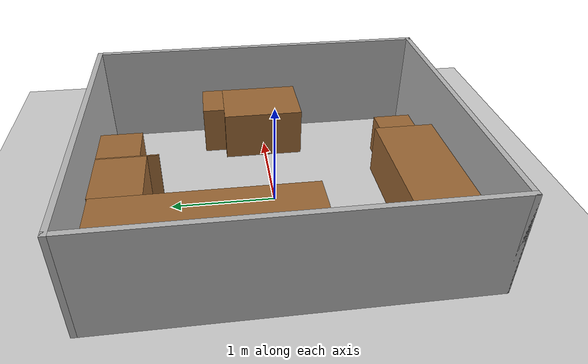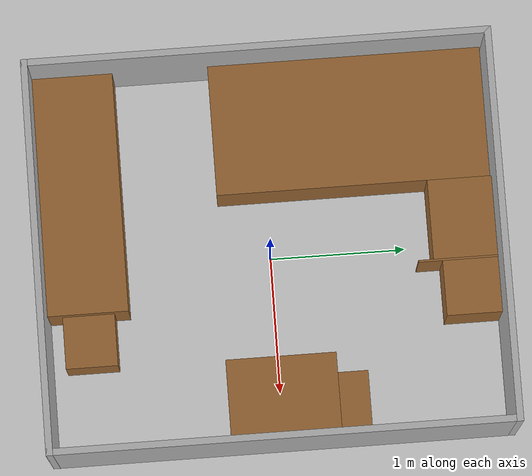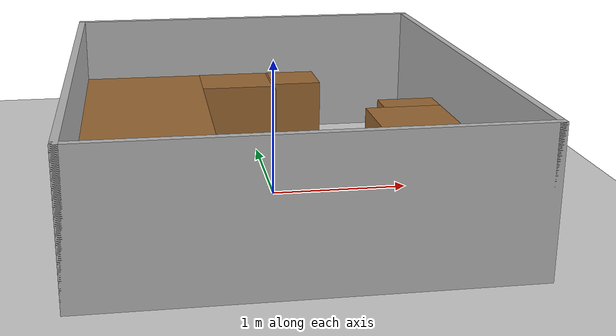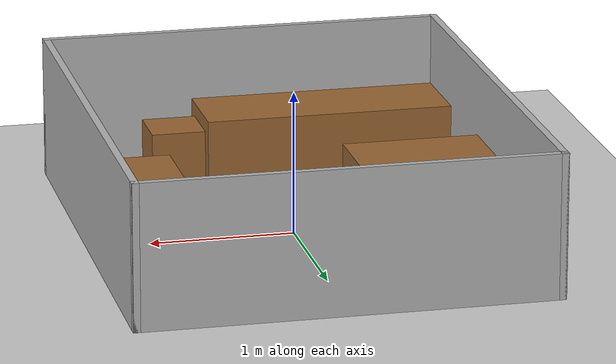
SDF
<sdf version='1.10'>
  <world name='empty'>

    <physics name='1ms' type='ignored'>
      <max_step_size>0.001</max_step_size>
      <real_time_factor>1</real_time_factor>
      <real_time_update_rate>1000</real_time_update_rate>
    </physics>
    <plugin name='gz::sim::systems::Physics' filename='gz-sim-physics-system'/>
    <plugin name='gz::sim::systems::UserCommands' filename='gz-sim-user-commands-system'/>
    <plugin name='gz::sim::systems::SceneBroadcaster' filename='gz-sim-scene-broadcaster-system'/>
    <plugin name='gz::sim::systems::Contact' filename='gz-sim-contact-system'/>
    <plugin name='gz::sim::systems::NavSat' filename='gz-sim-navsat-system'/>
    <plugin name='gz::sim::systems::Sensors' filename='gz-sim-sensors-system'>
      <render_engine>ogre2</render_engine>
    </plugin>
    <plugin name='gz::sim::systems::Imu' filename='gz-sim-imu-system'/>

    <gravity>0 0 -9.8</gravity>
    <magnetic_field>5.5645e-06 2.28758e-05 -4.23884e-05</magnetic_field>
    <atmosphere type='adiabatic'/>
    <scene>
      <ambient>0.4 0.4 0.4 1</ambient>
      <background>0.7 0.7 0.7 1</background>
      <shadows>true</shadows>
    </scene>

    <!-- ─── Ground plane ─── -->
    <model name='ground_plane'>
      <static>true</static>
      <link name='link'>
        <collision name='collision'>
          <geometry><plane><normal>0 0 1</normal><size>100 100</size></plane></geometry>
          <surface><friction><ode/></friction><bounce/><contact/></surface>
        </collision>
        <visual name='visual'>
          <geometry><plane><normal>0 0 1</normal><size>100 100</size></plane></geometry>
          <material>
            <ambient>0.8 0.8 0.8 1</ambient>
            <diffuse>0.8 0.8 0.8 1</diffuse>
            <specular>0.8 0.8 0.8 1</specular>
          </material>
        </visual>
        <pose>0 0 0 0 0 0</pose>
        <inertial>
          <pose>0 0 0 0 0 0</pose>
          <mass>1</mass>
          <inertia>
            <ixx>1</ixx><ixy>0</ixy><ixz>0</ixz>
            <iyy>1</iyy><iyz>0</iyz><izz>1</izz>
          </inertia>
        </inertial>
        <enable_wind>false</enable_wind>
      </link>
      <pose>0 0 0 0 0 0</pose>
      <self_collide>false</self_collide>
    </model>

    <!--
    ===========================================================
    ROOM WALLS
    ===========================================================
    -->
    <!-- Top wall (+y) -->
    <model name='wall_top'>
      <pose>0 1.675 0.5 0 0 0</pose>
      <link name='box_link'>
        <inertial>
          <inertia><ixx>0.167</ixx><ixy>0</ixy><ixz>0</ixz><iyy>0.167</iyy><iyz>0</iyz><izz>0.167</izz></inertia>
          <mass>1</mass><pose>0 0 0 0 0 0</pose>
        </inertial>
        <collision name='box_collision'>
          <geometry><box><size>2.87 0.05 1.0</size></box></geometry>
          <surface><friction><ode/></friction><bounce/><contact/></surface>
        </collision>
        <visual name='box_visual'>
          <geometry><box><size>2.87 0.05 1.0</size></box></geometry>
          <material>
            <ambient>0.3 0.3 0.3 1</ambient>
            <diffuse>0.7 0.7 0.7 1</diffuse>
            <specular>1 1 1 1</specular>
          </material>
        </visual>
        <pose>0 0 0 0 0 0</pose>
        <enable_wind>false</enable_wind>
      </link>
      <static>true</static>
      <self_collide>false</self_collide>
    </model>

    <!-- Bottom wall (-y) -->
    <model name='wall_bottom'>
      <pose>0 -1.675 0.5 0 0 0</pose>
      <link name='box_link'>
        <inertial>
          <inertia><ixx>0.167</ixx><ixy>0</ixy><ixz>0</ixz><iyy>0.167</iyy><iyz>0</iyz><izz>0.167</izz></inertia>
          <mass>1</mass><pose>0 0 0 0 0 0</pose>
        </inertial>
        <collision name='box_collision'>
          <geometry><box><size>2.87 0.05 1.0</size></box></geometry>
          <surface><friction><ode/></friction><bounce/><contact/></surface>
        </collision>
        <visual name='box_visual'>
          <geometry><box><size>2.87 0.05 1.0</size></box></geometry>
          <material>
            <ambient>0.3 0.3 0.3 1</ambient>
            <diffuse>0.7 0.7 0.7 1</diffuse>
            <specular>1 1 1 1</specular>
          </material>
        </visual>
        <pose>0 0 0 0 0 0</pose>
        <enable_wind>false</enable_wind>
      </link>
      <static>true</static>
      <self_collide>false</self_collide>
    </model>

    <!-- Right wall (+x) -->
    <model name='wall_right'>
      <pose>1.41 0 0.5 0 0 0</pose>
      <link name='box_link'>
        <inertial>
          <inertia><ixx>0.167</ixx><ixy>0</ixy><ixz>0</ixz><iyy>0.167</iyy><iyz>0</iyz><izz>0.167</izz></inertia>
          <mass>1</mass><pose>0 0 0 0 0 0</pose>
        </inertial>
        <collision name='box_collision'>
          <geometry><box><size>0.05 3.40 1.0</size></box></geometry>
          <surface><friction><ode/></friction><bounce/><contact/></surface>
        </collision>
        <visual name='box_visual'>
          <geometry><box><size>0.05 3.40 1.0</size></box></geometry>
          <material>
            <ambient>0.3 0.3 0.3 1</ambient>
            <diffuse>0.7 0.7 0.7 1</diffuse>
            <specular>1 1 1 1</specular>
          </material>
        </visual>
        <pose>0 0 0 0 0 0</pose>
        <enable_wind>false</enable_wind>
      </link>
      <static>true</static>
      <self_collide>false</self_collide>
    </model>

    <!-- Left wall (-x) -->
    <model name='wall_left'>
      <pose>-1.41 0 0.5 0 0 0</pose>
      <link name='box_link'>
        <inertial>
          <inertia><ixx>0.167</ixx><ixy>0</ixy><ixz>0</ixz><iyy>0.167</iyy><iyz>0</iyz><izz>0.167</izz></inertia>
          <mass>1</mass><pose>0 0 0 0 0 0</pose>
        </inertial>
        <collision name='box_collision'>
          <geometry><box><size>0.05 3.40 1.0</size></box></geometry>
          <surface><friction><ode/></friction><bounce/><contact/></surface>
        </collision>
        <visual name='box_visual'>
          <geometry><box><size>0.05 3.40 1.0</size></box></geometry>
          <material>
            <ambient>0.3 0.3 0.3 1</ambient>
            <diffuse>0.7 0.7 0.7 1</diffuse>
            <specular>1 1 1 1</specular>
          </material>
        </visual>
        <pose>0 0 0 0 0 0</pose>
        <enable_wind>false</enable_wind>
      </link>
      <static>true</static>
      <self_collide>false</self_collide>
    </model>

    <!--
    ===========================================================
    FURNITURE  (all static — permanent obstacles)
    ===========================================================
    -->
    <!-- Wardrobe -->
    <model name='wardrobe'>
      <pose>-0.505 -1.355 0.25 0 0 0</pose>
      <link name='box_link'>
        <inertial>
          <inertia><ixx>0.167</ixx><ixy>0</ixy><ixz>0</ixz><iyy>0.167</iyy><iyz>0</iyz><izz>0.167</izz></inertia>
          <mass>1</mass><pose>0 0 0 0 0 0</pose>
        </inertial>
        <collision name='box_collision'>
          <geometry><box><size>1.76 0.59 0.50</size></box></geometry>
          <surface><friction><ode/></friction><bounce/><contact/></surface>
        </collision>
        <visual name='box_visual'>
          <geometry><box><size>1.76 0.59 0.50</size></box></geometry>
          <material>
            <ambient>0.45 0.30 0.15 1</ambient>
            <diffuse>0.60 0.40 0.20 1</diffuse>
            <specular>0.3 0.3 0.3 1</specular>
          </material>
        </visual>
        <pose>0 0 0 0 0 0</pose>
        <enable_wind>false</enable_wind>
      </link>
      <static>true</static>
      <self_collide>false</self_collide>
    </model>

    <!-- Bed -->
    <model name='bed'>
      <pose>-0.905 0.64 0.25 0 0 0</pose>
      <link name='box_link'>
        <inertial>
          <inertia><ixx>0.167</ixx><ixy>0</ixy><ixz>0</ixz><iyy>0.167</iyy><iyz>0</iyz><izz>0.167</izz></inertia>
          <mass>1</mass><pose>0 0 0 0 0 0</pose>
        </inertial>
        <collision name='box_collision'>
          <geometry><box><size>0.96 2.00 0.50</size></box></geometry>
          <surface><friction><ode/></friction><bounce/><contact/></surface>
        </collision>
        <visual name='box_visual'>
          <geometry><box><size>0.96 2.00 0.50</size></box></geometry>
          <material>
            <ambient>0.45 0.30 0.15 1</ambient>
            <diffuse>0.60 0.40 0.20 1</diffuse>
            <specular>0.3 0.3 0.3 1</specular>
          </material>
        </visual>
        <pose>0 0 0 0 0 0</pose>
        <enable_wind>false</enable_wind>
      </link>
      <static>true</static>
      <self_collide>false</self_collide>
    </model>

    <!-- Desk -->
    <model name='desk'>
      <pose>1.085 0.02 0.25 0 0 0</pose>
      <link name='box_link'>
        <inertial>
          <inertia><ixx>0.167</ixx><ixy>0</ixy><ixz>0</ixz><iyy>0.167</iyy><iyz>0</iyz><izz>0.167</izz></inertia>
          <mass>1</mass><pose>0 0 0 0 0 0</pose>
        </inertial>
        <collision name='box_collision'>
          <geometry><box><size>0.60 0.805 0.50</size></box></geometry>
          <surface><friction><ode/></friction><bounce/><contact/></surface>
        </collision>
        <visual name='box_visual'>
          <geometry><box><size>0.60 0.805 0.50</size></box></geometry>
          <material>
            <ambient>0.45 0.30 0.15 1</ambient>
            <diffuse>0.60 0.40 0.20 1</diffuse>
            <specular>0.3 0.3 0.3 1</specular>
          </material>
        </visual>
        <pose>0 0 0 0 0 0</pose>
        <enable_wind>false</enable_wind>
      </link>
      <static>true</static>
      <self_collide>false</self_collide>
    </model>

    <!-- Stereo -->
    <model name='stereo'>
      <pose>-0.1325 1.415 0.25 0 0 0</pose>
      <link name='box_link'>
        <inertial>
          <inertia><ixx>0.167</ixx><ixy>0</ixy><ixz>0</ixz><iyy>0.167</iyy><iyz>0</iyz><izz>0.167</izz></inertia>
          <mass>1</mass><pose>0 0 0 0 0 0</pose>
        </inertial>
        <collision name='box_collision'>
          <geometry><box><size>0.585 0.47 0.50</size></box></geometry>
          <surface><friction><ode/></friction><bounce/><contact/></surface>
        </collision>
        <visual name='box_visual'>
          <geometry><box><size>0.585 0.47 0.50</size></box></geometry>
          <material>
            <ambient>0.45 0.30 0.15 1</ambient>
            <diffuse>0.60 0.40 0.20 1</diffuse>
            <specular>0.3 0.3 0.3 1</specular>
          </material>
        </visual>
        <pose>0 0 0 0 0 0</pose>
        <enable_wind>false</enable_wind>
      </link>
      <static>true</static>
      <self_collide>false</self_collide>
    </model>

    <!-- Desk Leg -->
    <model name='desk_leg'>
      <pose>0.1675 1.36 0.25 0 0 1.57079632679</pose>
      <link name='box_link'>
        <inertial>
          <inertia><ixx>0.167</ixx><ixy>0</ixy><ixz>0</ixz><iyy>0.167</iyy><iyz>0</iyz><izz>0.167</izz></inertia>
          <mass>1</mass><pose>0 0 0 0 0 0</pose>
        </inertial>
        <collision name='box_collision'>
          <geometry><box><size>0.58 0.015 0.50</size></box></geometry>
          <surface><friction><ode/></friction><bounce/><contact/></surface>
        </collision>
        <visual name='box_visual'>
          <geometry><box><size>0.58 0.015 0.50</size></box></geometry>
          <material>
            <ambient>0.45 0.30 0.15 1</ambient>
            <diffuse>0.60 0.40 0.20 1</diffuse>
            <specular>0.3 0.3 0.3 1</specular>
          </material>
        </visual>
        <pose>0 0 0 0 0 0</pose>
        <enable_wind>false</enable_wind>
      </link>
      <static>true</static>
      <self_collide>false</self_collide>
    </model>

    <!-- Nightstand -->
    <model name='nightstand'>
      <pose>0.3775 1.4475 0.25 0 0 0</pose>
      <link name='box_link'>
        <inertial>
          <inertia><ixx>0.167</ixx><ixy>0</ixy><ixz>0</ixz><iyy>0.167</iyy><iyz>0</iyz><izz>0.167</izz></inertia>
          <mass>1</mass><pose>0 0 0 0 0 0</pose>
        </inertial>
        <collision name='box_collision'>
          <geometry><box><size>0.405 0.405 0.50</size></box></geometry>
          <surface><friction><ode/></friction><bounce/><contact/></surface>
        </collision>
        <visual name='box_visual'>
          <geometry><box><size>0.405 0.405 0.50</size></box></geometry>
          <material>
            <ambient>0.45 0.30 0.15 1</ambient>
            <diffuse>0.60 0.40 0.20 1</diffuse>
            <specular>0.3 0.3 0.3 1</specular>
          </material>
        </visual>
        <pose>0 0 0 0 0 0</pose>
        <enable_wind>false</enable_wind>
      </link>
      <static>true</static>
      <self_collide>false</self_collide>
    </model>

    <!-- Clothes Hanger -->
    <model name='clothes_hanger'>
      <pose>0.565 -1.355 0.20 0 0 0</pose>
      <link name='box_link'>
        <inertial>
          <inertia><ixx>0.167</ixx><ixy>0</ixy><ixz>0</ixz><iyy>0.167</iyy><iyz>0</iyz><izz>0.167</izz></inertia>
          <mass>1</mass><pose>0 0 0 0 0 0</pose>
        </inertial>
        <collision name='box_collision'>
          <geometry><box><size>0.38 0.38 0.40</size></box></geometry>
          <surface><friction><ode/></friction><bounce/><contact/></surface>
        </collision>
        <visual name='box_visual'>
          <geometry><box><size>0.38 0.38 0.40</size></box></geometry>
          <material>
            <ambient>0.45 0.30 0.15 1</ambient>
            <diffuse>0.60 0.40 0.20 1</diffuse>
            <specular>0.3 0.3 0.3 1</specular>
          </material>
        </visual>
        <pose>0 0 0 0 0 0</pose>
        <enable_wind>false</enable_wind>
      </link>
      <static>true</static>
      <self_collide>false</self_collide>
    </model>

    <!-- PC -->
    <model name='pc'>
      <pose>1.16 0.5325 0.25 0 0 0</pose>
      <link name='box_link'>
        <inertial>
          <inertia><ixx>0.167</ixx><ixy>0</ixy><ixz>0</ixz><iyy>0.167</iyy><iyz>0</iyz><izz>0.167</izz></inertia>
          <mass>1</mass><pose>0 0 0 0 0 0</pose>
        </inertial>
        <collision name='box_collision'>
          <geometry><box><size>0.45 0.22 0.50</size></box></geometry>
          <surface><friction><ode/></friction><bounce/><contact/></surface>
        </collision>
        <visual name='box_visual'>
          <geometry><box><size>0.45 0.22 0.50</size></box></geometry>
          <material>
            <ambient>0.45 0.30 0.15 1</ambient>
            <diffuse>0.60 0.40 0.20 1</diffuse>
            <specular>0.3 0.3 0.3 1</specular>
          </material>
        </visual>
        <pose>0 0 0 0 0 0</pose>
        <enable_wind>false</enable_wind>
      </link>
      <static>true</static>
      <self_collide>false</self_collide>
    </model>

    <!-- ─── Lighting ─── -->
    <light name='sun' type='directional'>
      <pose>0 0 10 0 0 0</pose>
      <cast_shadows>true</cast_shadows>
      <intensity>1</intensity>
      <direction>-0.5 0.1 -0.9</direction>
      <diffuse>0.8 0.8 0.8 1</diffuse>
      <specular>0.2 0.2 0.2 1</specular>
      <attenuation>
        <range>1000</range>
        <linear>0.01</linear>
        <constant>0.9</constant>
        <quadratic>0.001</quadratic>
      </attenuation>
      <spot>
        <inner_angle>0</inner_angle>
        <outer_angle>0</outer_angle>
        <falloff>0</falloff>
      </spot>
    </light>
  </world>
</sdf>
